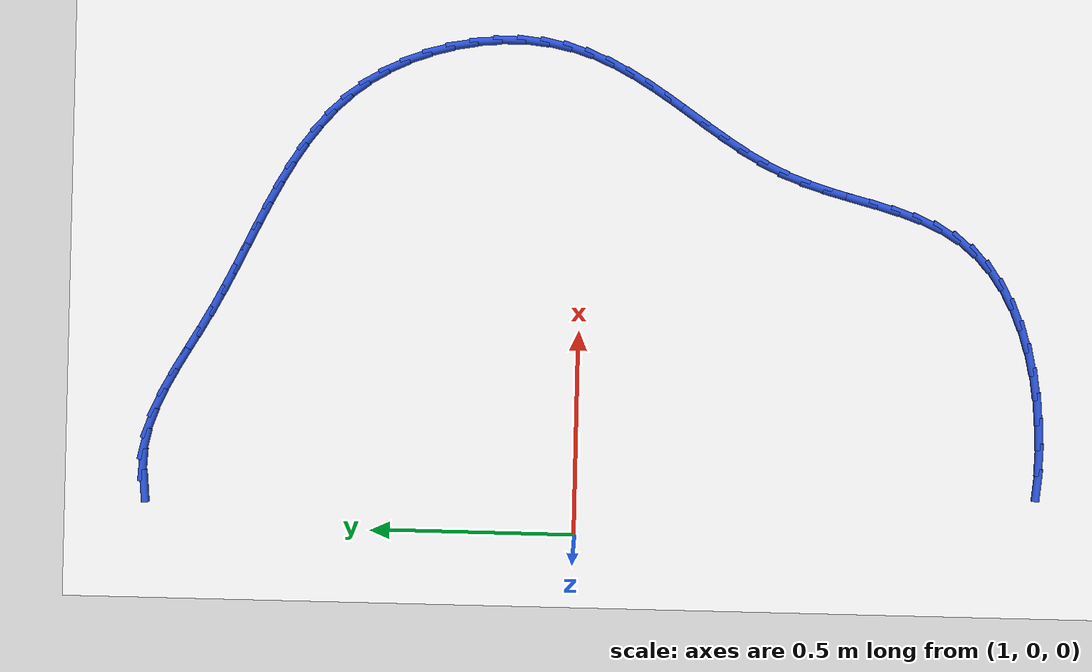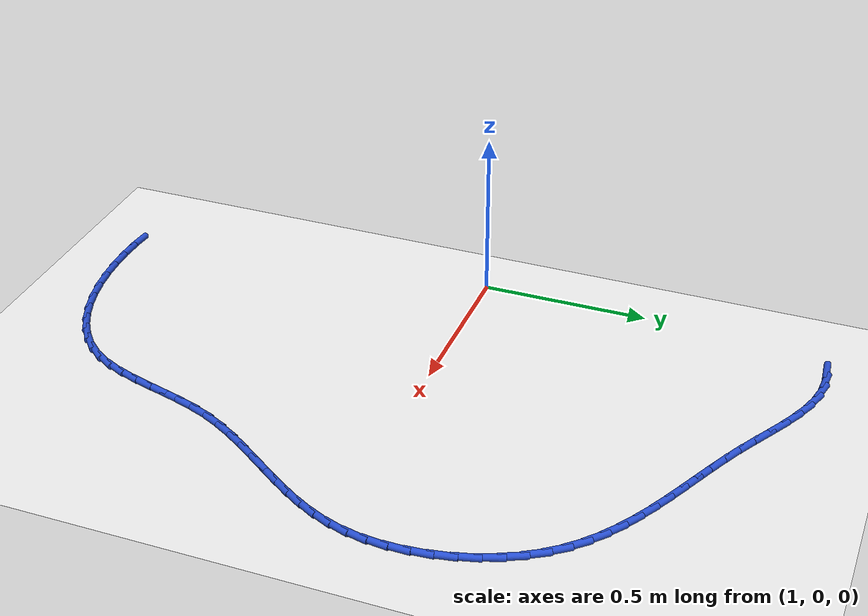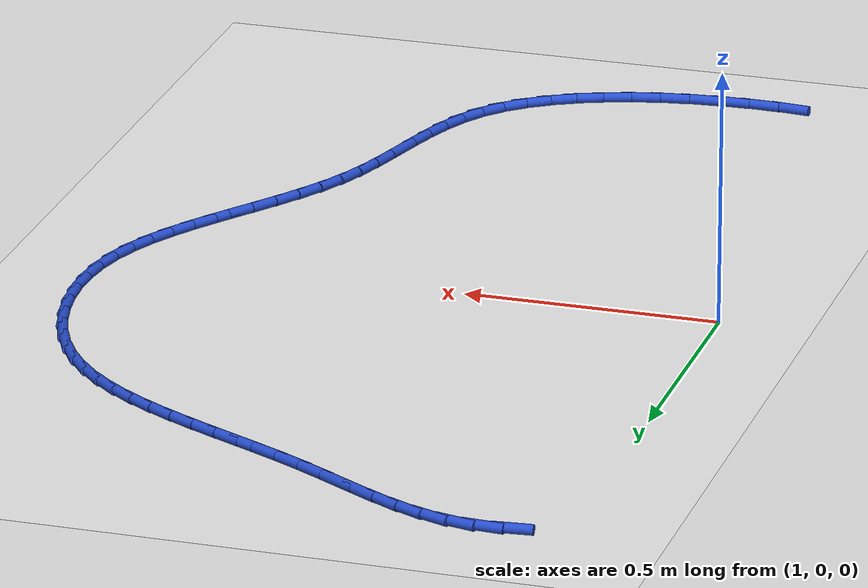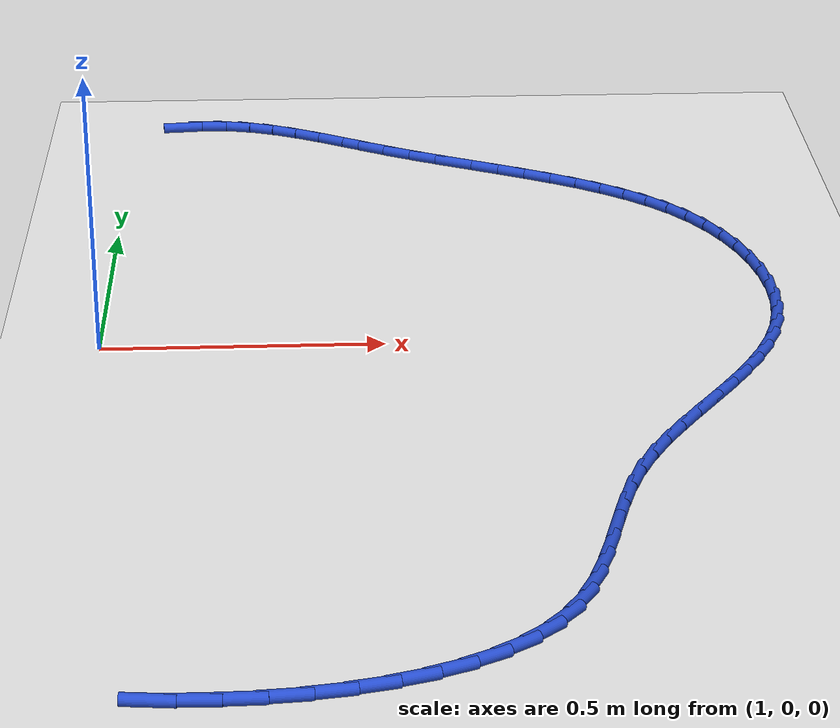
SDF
<sdf version="1.6">
 <world name="default">
  <model name="ground_plane">
   <static>1</static>
   <link name="link">
    <collision name="collision">
     <geometry><plane><normal>0 0 1</normal><size>100 100</size></plane></geometry>
     <surface><friction><ode><mu>100</mu><mu2>50</mu2></ode></friction></surface>
    </collision>
    <visual name="visual">
     <cast_shadows>0</cast_shadows>
     <geometry><plane><normal>0 0 1</normal><size>100 100</size></plane></geometry>
     <material>
      <script><uri>file://media/materials/scripts/gazebo.material</uri><name>Gazebo/WhiteGlow</name></script>
     </material>
    </visual>
   </link>
  </model>
  <model name="line">
   <link name="link_29">
    <pose>1.0969728662997957 1.054257182528616 0.01 0 1.57 0.08889747462284289</pose>
    <collision name="collision">
     <geometry><cylinder><radius>0.01</radius><length>0.08</length></cylinder></geometry>
    </collision>
    <visual name="visual">
     <material>
      <script><name>Gazebo/Blue</name><uri>file://media/materials/scripts/gazebo.material</uri></script>
     </material>
     <geometry><cylinder><radius>0.01</radius><length>0.08</length></cylinder></geometry>
    </visual>
   </link>
   <link name="link_30">
    <pose>1.1488038112493104 1.0588769988264373 0.01 0 1.57 -0.06228667716586876</pose>
    <collision name="collision">
     <geometry><cylinder><radius>0.01</radius><length>0.08</length></cylinder></geometry>
    </collision>
    <visual name="visual">
     <material>
      <script><name>Gazebo/Blue</name><uri>file://media/materials/scripts/gazebo.material</uri></script>
     </material>
     <geometry><cylinder><radius>0.01</radius><length>0.08</length></cylinder></geometry>
    </visual>
   </link>
   <link name="link_31">
    <pose>1.2000704950201648 1.0556796315076389 0.01 0 1.57 -0.2228126759073411</pose>
    <collision name="collision">
     <geometry><cylinder><radius>0.01</radius><length>0.08</length></cylinder></geometry>
    </collision>
    <visual name="visual">
     <material>
      <script><name>Gazebo/Blue</name><uri>file://media/materials/scripts/gazebo.material</uri></script>
     </material>
     <geometry><cylinder><radius>0.01</radius><length>0.08</length></cylinder></geometry>
    </visual>
   </link>
   <link name="link_32">
    <pose>1.2507771792683753 1.0441907841162532 0.01 0 1.57 -0.351570168309762</pose>
    <collision name="collision">
     <geometry><cylinder><radius>0.01</radius><length>0.08</length></cylinder></geometry>
    </collision>
    <visual name="visual">
     <material>
      <script><name>Gazebo/Blue</name><uri>file://media/materials/scripts/gazebo.material</uri></script>
     </material>
     <geometry><cylinder><radius>0.01</radius><length>0.08</length></cylinder></geometry>
    </visual>
   </link>
   <link name="link_33">
    <pose>1.3011128082766208 1.0257272272382287 0.01 0 1.57 -0.4430232968451391</pose>
    <collision name="collision">
     <geometry><cylinder><radius>0.01</radius><length>0.08</length></cylinder></geometry>
    </collision>
    <visual name="visual">
     <material>
      <script><name>Gazebo/Blue</name><uri>file://media/materials/scripts/gazebo.material</uri></script>
     </material>
     <geometry><cylinder><radius>0.01</radius><length>0.08</length></cylinder></geometry>
    </visual>
   </link>
   <link name="link_34">
    <pose>1.351298245172227 1.0019152829949984 0.01 0 1.57 -0.5012094177489993</pose>
    <collision name="collision">
     <geometry><cylinder><radius>0.01</radius><length>0.08</length></cylinder></geometry>
    </collision>
    <visual name="visual">
     <material>
      <script><name>Gazebo/Blue</name><uri>file://media/materials/scripts/gazebo.material</uri></script>
     </material>
     <geometry><cylinder><radius>0.01</radius><length>0.08</length></cylinder></geometry>
    </visual>
   </link>
   <link name="link_35">
    <pose>1.4015543530825199 0.9743812735079957 0.01 0 1.57 -0.5301918646129635</pose>
    <collision name="collision">
     <geometry><cylinder><radius>0.01</radius><length>0.08</length></cylinder></geometry>
    </collision>
    <visual name="visual">
     <material>
      <script><name>Gazebo/Blue</name><uri>file://media/materials/scripts/gazebo.material</uri></script>
     </material>
     <geometry><cylinder><radius>0.01</radius><length>0.08</length></cylinder></geometry>
    </visual>
   </link>
   <link name="link_36">
    <pose>1.4521019951348237 0.944751520898654 0.01 0 1.57 -0.532652678316754</pose>
    <collision name="collision">
     <geometry><cylinder><radius>0.01</radius><length>0.08</length></cylinder></geometry>
    </collision>
    <visual name="visual">
     <material>
      <script><name>Gazebo/Blue</name><uri>file://media/materials/scripts/gazebo.material</uri></script>
     </material>
     <geometry><cylinder><radius>0.01</radius><length>0.08</length></cylinder></geometry>
    </visual>
   </link>
   <link name="link_37">
    <pose>1.5031620344564653 0.9146523472884063 0.01 0 1.57 -0.5102683431471119</pose>
    <collision name="collision">
     <geometry><cylinder><radius>0.01</radius><length>0.08</length></cylinder></geometry>
    </collision>
    <visual name="visual">
     <material>
      <script><name>Gazebo/Blue</name><uri>file://media/materials/scripts/gazebo.material</uri></script>
     </material>
     <geometry><cylinder><radius>0.01</radius><length>0.08</length></cylinder></geometry>
    </visual>
   </link>
   <link name="link_38">
    <pose>1.554943592914567 0.8856696357211216 0.01 0 1.57 -0.4801335186555826</pose>
    <collision name="collision">
     <geometry><cylinder><radius>0.01</radius><length>0.08</length></cylinder></geometry>
    </collision>
    <visual name="visual">
     <material>
      <script><name>Gazebo/Blue</name><uri>file://media/materials/scripts/gazebo.material</uri></script>
     </material>
     <geometry><cylinder><radius>0.01</radius><length>0.08</length></cylinder></geometry>
    </visual>
   </link>
   <link name="link_39">
    <pose>1.6073604247927695 0.8583719685069611 0.01 0 1.57 -0.4603671205808581</pose>
    <collision name="collision">
     <geometry><cylinder><radius>0.01</radius><length>0.08</length></cylinder></geometry>
    </collision>
    <visual name="visual">
     <material>
      <script><name>Gazebo/Blue</name><uri>file://media/materials/scripts/gazebo.material</uri></script>
     </material>
     <geometry><cylinder><radius>0.01</radius><length>0.08</length></cylinder></geometry>
    </visual>
   </link>
   <link name="link_40">
    <pose>1.6600161261576352 0.8322596855373354 0.01 0 1.57 -0.4519260573801818</pose>
    <collision name="collision">
     <geometry><cylinder><radius>0.01</radius><length>0.08</length></cylinder></geometry>
    </collision>
    <visual name="visual">
     <material>
      <script><name>Gazebo/Blue</name><uri>file://media/materials/scripts/gazebo.material</uri></script>
     </material>
     <geometry><cylinder><radius>0.01</radius><length>0.08</length></cylinder></geometry>
    </visual>
   </link>
   <link name="link_41">
    <pose>1.712499591474671 0.8067824916631974 0.01 0 1.57 -0.4550147944020864</pose>
    <collision name="collision">
     <geometry><cylinder><radius>0.01</radius><length>0.08</length></cylinder></geometry>
    </collision>
    <visual name="visual">
     <material>
      <script><name>Gazebo/Blue</name><uri>file://media/materials/scripts/gazebo.material</uri></script>
     </material>
     <geometry><cylinder><radius>0.01</radius><length>0.08</length></cylinder></geometry>
    </visual>
   </link>
   <link name="link_42">
    <pose>1.7643997152093849 0.7813900917355006 0.01 0 1.57 -0.469993026882685</pose>
    <collision name="collision">
     <geometry><cylinder><radius>0.01</radius><length>0.08</length></cylinder></geometry>
    </collision>
    <visual name="visual">
     <material>
      <script><name>Gazebo/Blue</name><uri>file://media/materials/scripts/gazebo.material</uri></script>
     </material>
     <geometry><cylinder><radius>0.01</radius><length>0.08</length></cylinder></geometry>
    </visual>
   </link>
   <link name="link_43">
    <pose>1.8153053918272848 0.7555321906051982 0.01 0 1.57 -0.4973770689594525</pose>
    <collision name="collision">
     <geometry><cylinder><radius>0.01</radius><length>0.08</length></cylinder></geometry>
    </collision>
    <visual name="visual">
     <material>
      <script><name>Gazebo/Blue</name><uri>file://media/materials/scripts/gazebo.material</uri></script>
     </material>
     <geometry><cylinder><radius>0.01</radius><length>0.08</length></cylinder></geometry>
    </visual>
   </link>
   <link name="link_44">
    <pose>1.8648055157938779 0.7286584931232438 0.01 0 1.57 -0.537789429361796</pose>
    <collision name="collision">
     <geometry><cylinder><radius>0.01</radius><length>0.08</length></cylinder></geometry>
    </collision>
    <visual name="visual">
     <material>
      <script><name>Gazebo/Blue</name><uri>file://media/materials/scripts/gazebo.material</uri></script>
     </material>
     <geometry><cylinder><radius>0.01</radius><length>0.08</length></cylinder></geometry>
    </visual>
   </link>
   <link name="link_45">
    <pose>1.9124889815746708 0.7002187041405903 0.01 0 1.57 -0.5918365165851995</pose>
    <collision name="collision">
     <geometry><cylinder><radius>0.01</radius><length>0.08</length></cylinder></geometry>
    </collision>
    <visual name="visual">
     <material>
      <script><name>Gazebo/Blue</name><uri>file://media/materials/scripts/gazebo.material</uri></script>
     </material>
     <geometry><cylinder><radius>0.01</radius><length>0.08</length></cylinder></geometry>
    </visual>
   </link>
   <link name="link_46">
    <pose>1.9579446836351726 0.6696625285081915 0.01 0 1.57 -0.6598907183020574</pose>
    <collision name="collision">
     <geometry><cylinder><radius>0.01</radius><length>0.08</length></cylinder></geometry>
    </collision>
    <visual name="visual">
     <material>
      <script><name>Gazebo/Blue</name><uri>file://media/materials/scripts/gazebo.material</uri></script>
     </material>
     <geometry><cylinder><radius>0.01</radius><length>0.08</length></cylinder></geometry>
    </visual>
   </link>
   <link name="link_47">
    <pose>2.0007615164408894 0.6364396710770002 0.01 0 1.57 -0.7417679760081224</pose>
    <collision name="collision">
     <geometry><cylinder><radius>0.01</radius><length>0.08</length></cylinder></geometry>
    </collision>
    <visual name="visual">
     <material>
      <script><name>Gazebo/Blue</name><uri>file://media/materials/scripts/gazebo.material</uri></script>
     </material>
     <geometry><cylinder><radius>0.01</radius><length>0.08</length></cylinder></geometry>
    </visual>
   </link>
   <link name="link_48">
    <pose>2.0405283744573297 0.59999983669797 0.01 0 1.57 -0.8363432176033798</pose>
    <collision name="collision">
     <geometry><cylinder><radius>0.01</radius><length>0.08</length></cylinder></geometry>
    </collision>
    <visual name="visual">
     <material>
      <script><name>Gazebo/Blue</name><uri>file://media/materials/scripts/gazebo.material</uri></script>
     </material>
     <geometry><cylinder><radius>0.01</radius><length>0.08</length></cylinder></geometry>
    </visual>
   </link>
   <link name="link_49">
    <pose>2.07683415215 0.5597927302220543 0.01 0 1.57 -0.9409349262624538</pose>
    <collision name="collision">
     <geometry><cylinder><radius>0.01</radius><length>0.08</length></cylinder></geometry>
    </collision>
    <visual name="visual">
     <material>
      <script><name>Gazebo/Blue</name><uri>file://media/materials/scripts/gazebo.material</uri></script>
     </material>
     <geometry><cylinder><radius>0.01</radius><length>0.08</length></cylinder></geometry>
    </visual>
   </link>
   <link name="link_50">
    <pose>2.1092714935890777 0.5152911092952521 0.01 0 1.57 -1.045067863066294</pose>
    <collision name="collision">
     <geometry><cylinder><radius>0.01</radius><length>0.08</length></cylinder></geometry>
    </collision>
    <visual name="visual">
     <material>
      <script><name>Gazebo/Blue</name><uri>file://media/materials/scripts/gazebo.material</uri></script>
     </material>
     <geometry><cylinder><radius>0.01</radius><length>0.08</length></cylinder></geometry>
    </visual>
   </link>
   <link name="link_51">
    <pose>2.1375327889201654 0.46658097643516044 0.01 0 1.57 -1.1414372080815771</pose>
    <collision name="collision">
     <geometry><cylinder><radius>0.01</radius><length>0.08</length></cylinder></geometry>
    </collision>
    <visual name="visual">
     <material>
      <script><name>Gazebo/Blue</name><uri>file://media/materials/scripts/gazebo.material</uri></script>
     </material>
     <geometry><cylinder><radius>0.01</radius><length>0.08</length></cylinder></geometry>
    </visual>
   </link>
   <link name="link_52">
    <pose>2.1614183094937824 0.4144115942964042 0.01 0 1.57 -1.2321867495681174</pose>
    <collision name="collision">
     <geometry><cylinder><radius>0.01</radius><length>0.08</length></cylinder></geometry>
    </collision>
    <visual name="visual">
     <material>
      <script><name>Gazebo/Blue</name><uri>file://media/materials/scripts/gazebo.material</uri></script>
     </material>
     <geometry><cylinder><radius>0.01</radius><length>0.08</length></cylinder></geometry>
    </visual>
   </link>
   <link name="link_53">
    <pose>2.180733706426887 0.35956530066128295 0.01 0 1.57 -1.3197608304589081</pose>
    <collision name="collision">
     <geometry><cylinder><radius>0.01</radius><length>0.08</length></cylinder></geometry>
    </collision>
    <visual name="visual">
     <material>
      <script><name>Gazebo/Blue</name><uri>file://media/materials/scripts/gazebo.material</uri></script>
     </material>
     <geometry><cylinder><radius>0.01</radius><length>0.08</length></cylinder></geometry>
    </visual>
   </link>
   <link name="link_54">
    <pose>2.1952846308364387 0.30282443331209463 0.01 0 1.57 -1.4064900271755667</pose>
    <collision name="collision">
     <geometry><cylinder><radius>0.01</radius><length>0.08</length></cylinder></geometry>
    </collision>
    <visual name="visual">
     <material>
      <script><name>Gazebo/Blue</name><uri>file://media/materials/scripts/gazebo.material</uri></script>
     </material>
     <geometry><cylinder><radius>0.01</radius><length>0.08</length></cylinder></geometry>
    </visual>
   </link>
   <link name="link_55">
    <pose>2.204876733839396 0.24497133003113863 0.01 0 1.57 -1.4946512294828471</pose>
    <collision name="collision">
     <geometry><cylinder><radius>0.01</radius><length>0.08</length></cylinder></geometry>
    </collision>
    <visual name="visual">
     <material>
      <script><name>Gazebo/Blue</name><uri>file://media/materials/scripts/gazebo.material</uri></script>
     </material>
     <geometry><cylinder><radius>0.01</radius><length>0.08</length></cylinder></geometry>
    </visual>
   </link>
   <link name="link_56">
    <pose>2.2093156665527163 0.1867883286007128 0.01 0 1.57 1.5550592297681132</pose>
    <collision name="collision">
     <geometry><cylinder><radius>0.01</radius><length>0.08</length></cylinder></geometry>
    </collision>
    <visual name="visual">
     <material>
      <script><name>Gazebo/Blue</name><uri>file://media/materials/scripts/gazebo.material</uri></script>
     </material>
     <geometry><cylinder><radius>0.01</radius><length>0.08</length></cylinder></geometry>
    </visual>
   </link>
   <link name="link_57">
    <pose>2.2084070800933615 0.1290577668031168 0.01 0 1.57 1.4571127633714458</pose>
    <collision name="collision">
     <geometry><cylinder><radius>0.01</radius><length>0.08</length></cylinder></geometry>
    </collision>
    <visual name="visual">
     <material>
      <script><name>Gazebo/Blue</name><uri>file://media/materials/scripts/gazebo.material</uri></script>
     </material>
     <geometry><cylinder><radius>0.01</radius><length>0.08</length></cylinder></geometry>
    </visual>
   </link>
   <link name="link_58">
    <pose>2.201956625578288 0.0725619824206483 0.01 0 1.57 1.3508209022953774</pose>
    <collision name="collision">
     <geometry><cylinder><radius>0.01</radius><length>0.08</length></cylinder></geometry>
    </collision>
    <visual name="visual">
     <material>
      <script><name>Gazebo/Blue</name><uri>file://media/materials/scripts/gazebo.material</uri></script>
     </material>
     <geometry><cylinder><radius>0.01</radius><length>0.08</length></cylinder></geometry>
    </visual>
   </link>
   <link name="link_59">
    <pose>2.189774437217996 0.01807836830712001 0.01 0 1.57 1.2429329722542768</pose>
    <collision name="collision">
     <geometry><cylinder><radius>0.01</radius><length>0.08</length></cylinder></geometry>
    </collision>
    <visual name="visual">
     <material>
      <script><name>Gazebo/Blue</name><uri>file://media/materials/scripts/gazebo.material</uri></script>
     </material>
     <geometry><cylinder><radius>0.01</radius><length>0.08</length></cylinder></geometry>
    </visual>
   </link>
   <link name="link_60">
    <pose>2.172049225565983 -0.034033258834182616 0.01 0 1.57 1.1500943519283586</pose>
    <collision name="collision">
     <geometry><cylinder><radius>0.01</radius><length>0.08</length></cylinder></geometry>
    </collision>
    <visual name="visual">
     <material>
      <script><name>Gazebo/Blue</name><uri>file://media/materials/scripts/gazebo.material</uri></script>
     </material>
     <geometry><cylinder><radius>0.01</radius><length>0.08</length></cylinder></geometry>
    </visual>
   </link>
   <link name="link_61">
    <pose>2.149630067826929 -0.08414147795710682 0.01 0 1.57 1.075942292964172</pose>
    <collision name="collision">
     <geometry><cylinder><radius>0.01</radius><length>0.08</length></cylinder></geometry>
    </collision>
    <visual name="visual">
     <material>
      <script><name>Gazebo/Blue</name><uri>file://media/materials/scripts/gazebo.material</uri></script>
     </material>
     <geometry><cylinder><radius>0.01</radius><length>0.08</length></cylinder></geometry>
    </visual>
   </link>
   <link name="link_62">
    <pose>2.1234324111536216 -0.13268807519802972 0.01 0 1.57 1.0210551438257778</pose>
    <collision name="collision">
     <geometry><cylinder><radius>0.01</radius><length>0.08</length></cylinder></geometry>
    </collision>
    <visual name="visual">
     <material>
      <script><name>Gazebo/Blue</name><uri>file://media/materials/scripts/gazebo.material</uri></script>
     </material>
     <geometry><cylinder><radius>0.01</radius><length>0.08</length></cylinder></geometry>
    </visual>
   </link>
   <link name="link_63">
    <pose>2.094371702698852 -0.18011483669332898 0.01 0 1.57 0.9851297126211859</pose>
    <collision name="collision">
     <geometry><cylinder><radius>0.01</radius><length>0.08</length></cylinder></geometry>
    </collision>
    <visual name="visual">
     <material>
      <script><name>Gazebo/Blue</name><uri>file://media/materials/scripts/gazebo.material</uri></script>
     </material>
     <geometry><cylinder><radius>0.01</radius><length>0.08</length></cylinder></geometry>
    </visual>
   </link>
   <link name="link_64">
    <pose>2.06336338961541 -0.22686354857938013 0.01 0 1.57 0.9675874456906028</pose>
    <collision name="collision">
     <geometry><cylinder><radius>0.01</radius><length>0.08</length></cylinder></geometry>
    </collision>
    <visual name="visual">
     <material>
      <script><name>Gazebo/Blue</name><uri>file://media/materials/scripts/gazebo.material</uri></script>
     </material>
     <geometry><cylinder><radius>0.01</radius><length>0.08</length></cylinder></geometry>
    </visual>
   </link>
   <link name="link_65">
    <pose>2.0313229190560844 -0.2733759969925608 0.01 0 1.57 0.9679484985064164</pose>
    <collision name="collision">
     <geometry><cylinder><radius>0.01</radius><length>0.08</length></cylinder></geometry>
    </collision>
    <visual name="visual">
     <material>
      <script><name>Gazebo/Blue</name><uri>file://media/materials/scripts/gazebo.material</uri></script>
     </material>
     <geometry><cylinder><radius>0.01</radius><length>0.08</length></cylinder></geometry>
    </visual>
   </link>
   <link name="link_66">
    <pose>1.9991657381736658 -0.32009396806924845 0.01 0 1.57 0.9859928670061474</pose>
    <collision name="collision">
     <geometry><cylinder><radius>0.01</radius><length>0.08</length></cylinder></geometry>
    </collision>
    <visual name="visual">
     <material>
      <script><name>Gazebo/Blue</name><uri>file://media/materials/scripts/gazebo.material</uri></script>
     </material>
     <geometry><cylinder><radius>0.01</radius><length>0.08</length></cylinder></geometry>
    </visual>
   </link>
   <link name="link_67">
    <pose>1.9678072941209441 -0.36745924794581875 0.01 0 1.57 1.0217474038126741</pose>
    <collision name="collision">
     <geometry><cylinder><radius>0.01</radius><length>0.08</length></cylinder></geometry>
    </collision>
    <visual name="visual">
     <material>
      <script><name>Gazebo/Blue</name><uri>file://media/materials/scripts/gazebo.material</uri></script>
     </material>
     <geometry><cylinder><radius>0.01</radius><length>0.08</length></cylinder></geometry>
    </visual>
   </link>
   <link name="link_68">
    <pose>1.9381630340507086 -0.4159136227586492 0.01 0 1.57 1.0753132158441037</pose>
    <collision name="collision">
     <geometry><cylinder><radius>0.01</radius><length>0.08</length></cylinder></geometry>
    </collision>
    <visual name="visual">
     <material>
      <script><name>Gazebo/Blue</name><uri>file://media/materials/scripts/gazebo.material</uri></script>
     </material>
     <geometry><cylinder><radius>0.01</radius><length>0.08</length></cylinder></geometry>
    </visual>
   </link>
   <link name="link_69">
    <pose>1.9111484051157492 -0.4658988786441167 0.01 0 1.57 1.1465238890458025</pose>
    <collision name="collision">
     <geometry><cylinder><radius>0.01</radius><length>0.08</length></cylinder></geometry>
    </collision>
    <visual name="visual">
     <material>
      <script><name>Gazebo/Blue</name><uri>file://media/materials/scripts/gazebo.material</uri></script>
     </material>
     <geometry><cylinder><radius>0.01</radius><length>0.08</length></cylinder></geometry>
    </visual>
   </link>
   <link name="link_70">
    <pose>1.8876786976180002 -0.5178567080440973 0.01 0 1.57 1.2250828547654369</pose>
    <collision name="collision">
     <geometry><cylinder><radius>0.01</radius><length>0.08</length></cylinder></geometry>
    </collision>
    <visual name="visual">
     <material>
      <script><name>Gazebo/Blue</name><uri>file://media/materials/scripts/gazebo.material</uri></script>
     </material>
     <geometry><cylinder><radius>0.01</radius><length>0.08</length></cylinder></geometry>
    </visual>
   </link>
   <link name="link_71">
    <pose>1.8681967039818954 -0.5719465578687154 0.01 0 1.57 1.280624318490369</pose>
    <collision name="collision">
     <geometry><cylinder><radius>0.01</radius><length>0.08</length></cylinder></geometry>
    </collision>
    <visual name="visual">
     <material>
      <script><name>Gazebo/Blue</name><uri>file://media/materials/scripts/gazebo.material</uri></script>
     </material>
     <geometry><cylinder><radius>0.01</radius><length>0.08</length></cylinder></geometry>
    </visual>
   </link>
   <link name="link_72">
    <pose>1.8516312747492132 -0.6274235252901327 0.01 0 1.57 1.3084307100759613</pose>
    <collision name="collision">
     <geometry><cylinder><radius>0.01</radius><length>0.08</length></cylinder></geometry>
    </collision>
    <visual name="visual">
     <material>
      <script><name>Gazebo/Blue</name><uri>file://media/materials/scripts/gazebo.material</uri></script>
     </material>
     <geometry><cylinder><radius>0.01</radius><length>0.08</length></cylinder></geometry>
    </visual>
   </link>
   <link name="link_73">
    <pose>1.8366086650706699 -0.6833619528123456 0.01 0 1.57 1.3091775853645196</pose>
    <collision name="collision">
     <geometry><cylinder><radius>0.01</radius><length>0.08</length></cylinder></geometry>
    </collision>
    <visual name="visual">
     <material>
      <script><name>Gazebo/Blue</name><uri>file://media/materials/scripts/gazebo.material</uri></script>
     </material>
     <geometry><cylinder><radius>0.01</radius><length>0.08</length></cylinder></geometry>
    </visual>
   </link>
   <link name="link_74">
    <pose>1.8217551300969794 -0.7388361829393509 0.01 0 1.57 1.2821765746477405</pose>
    <collision name="collision">
     <geometry><cylinder><radius>0.01</radius><length>0.08</length></cylinder></geometry>
    </collision>
    <visual name="visual">
     <material>
      <script><name>Gazebo/Blue</name><uri>file://media/materials/scripts/gazebo.material</uri></script>
     </material>
     <geometry><cylinder><radius>0.01</radius><length>0.08</length></cylinder></geometry>
    </visual>
   </link>
   <link name="link_75">
    <pose>1.805696924978857 -0.792920558175144 0.01 0 1.57 1.2252436620706602</pose>
    <collision name="collision">
     <geometry><cylinder><radius>0.01</radius><length>0.08</length></cylinder></geometry>
    </collision>
    <visual name="visual">
     <material>
      <script><name>Gazebo/Blue</name><uri>file://media/materials/scripts/gazebo.material</uri></script>
     </material>
     <geometry><cylinder><radius>0.01</radius><length>0.08</length></cylinder></geometry>
    </visual>
   </link>
   <link name="link_76">
    <pose>1.787060304867017 -0.8446894210237212 0.01 0 1.57 1.1351422090830439</pose>
    <collision name="collision">
     <geometry><cylinder><radius>0.01</radius><length>0.08</length></cylinder></geometry>
    </collision>
    <visual name="visual">
     <material>
      <script><name>Gazebo/Blue</name><uri>file://media/materials/scripts/gazebo.material</uri></script>
     </material>
     <geometry><cylinder><radius>0.01</radius><length>0.08</length></cylinder></geometry>
    </visual>
   </link>
   <link name="link_77">
    <pose>1.7644715249121732 -0.8932171139890792 0.01 0 1.57 1.0091523153566155</pose>
    <collision name="collision">
     <geometry><cylinder><radius>0.01</radius><length>0.08</length></cylinder></geometry>
    </collision>
    <visual name="visual">
     <material>
      <script><name>Gazebo/Blue</name><uri>file://media/materials/scripts/gazebo.material</uri></script>
     </material>
     <geometry><cylinder><radius>0.01</radius><length>0.08</length></cylinder></geometry>
    </visual>
   </link>
   <link name="link_78">
    <pose>1.7365575621061746 -0.9375783576064083 0.01 0 1.57 0.8585115373942115</pose>
    <collision name="collision">
     <geometry><cylinder><radius>0.01</radius><length>0.08</length></cylinder></geometry>
    </collision>
    <visual name="visual">
     <material>
      <script><name>Gazebo/Blue</name><uri>file://media/materials/scripts/gazebo.material</uri></script>
     </material>
     <geometry><cylinder><radius>0.01</radius><length>0.08</length></cylinder></geometry>
    </visual>
   </link>
   <link name="link_79">
    <pose>1.702429188918844 -0.977101238107941 0.01 0 1.57 0.7157576769715819</pose>
    <collision name="collision">
     <geometry><cylinder><radius>0.01</radius><length>0.08</length></cylinder></geometry>
    </collision>
    <visual name="visual">
     <material>
      <script><name>Gazebo/Blue</name><uri>file://media/materials/scripts/gazebo.material</uri></script>
     </material>
     <geometry><cylinder><radius>0.01</radius><length>0.08</length></cylinder></geometry>
    </visual>
   </link>
   <link name="link_80">
    <pose>1.662519468023488 -1.0118063305860854 0.01 0 1.57 0.5880385650003856</pose>
    <collision name="collision">
     <geometry><cylinder><radius>0.01</radius><length>0.08</length></cylinder></geometry>
    </collision>
    <visual name="visual">
     <material>
      <script><name>Gazebo/Blue</name><uri>file://media/materials/scripts/gazebo.material</uri></script>
     </material>
     <geometry><cylinder><radius>0.01</radius><length>0.08</length></cylinder></geometry>
    </visual>
   </link>
   <link name="link_81">
    <pose>1.6174853114422152 -1.0418314409650256 0.01 0 1.57 0.47540890893272675</pose>
    <collision name="collision">
     <geometry><cylinder><radius>0.01</radius><length>0.08</length></cylinder></geometry>
    </collision>
    <visual name="visual">
     <material>
      <script><name>Gazebo/Blue</name><uri>file://media/materials/scripts/gazebo.material</uri></script>
     </material>
     <geometry><cylinder><radius>0.01</radius><length>0.08</length></cylinder></geometry>
    </visual>
   </link>
   <link name="link_82">
    <pose>1.5679836311971378 -1.0673143751689438 0.01 0 1.57 0.37651647328941823</pose>
    <collision name="collision">
     <geometry><cylinder><radius>0.01</radius><length>0.08</length></cylinder></geometry>
    </collision>
    <visual name="visual">
     <material>
      <script><name>Gazebo/Blue</name><uri>file://media/materials/scripts/gazebo.material</uri></script>
     </material>
     <geometry><cylinder><radius>0.01</radius><length>0.08</length></cylinder></geometry>
    </visual>
   </link>
   <link name="link_83">
    <pose>1.5146713393103663 -1.088392939122025 0.01 0 1.57 0.28937910807659145</pose>
    <collision name="collision">
     <geometry><cylinder><radius>0.01</radius><length>0.08</length></cylinder></geometry>
    </collision>
    <visual name="visual">
     <material>
      <script><name>Gazebo/Blue</name><uri>file://media/materials/scripts/gazebo.material</uri></script>
     </material>
     <geometry><cylinder><radius>0.01</radius><length>0.08</length></cylinder></geometry>
    </visual>
   </link>
   <link name="link_84">
    <pose>1.4582053478040096 -1.1052049387484524 0.01 0 1.57 0.21187737171409718</pose>
    <collision name="collision">
     <geometry><cylinder><radius>0.01</radius><length>0.08</length></cylinder></geometry>
    </collision>
    <visual name="visual">
     <material>
      <script><name>Gazebo/Blue</name><uri>file://media/materials/scripts/gazebo.material</uri></script>
     </material>
     <geometry><cylinder><radius>0.01</radius><length>0.08</length></cylinder></geometry>
    </visual>
   </link>
   <link name="link_85">
    <pose>1.3992425687001786 -1.11788817997241 0.01 0 1.57 0.1419969059852947</pose>
    <collision name="collision">
     <geometry><cylinder><radius>0.01</radius><length>0.08</length></cylinder></geometry>
    </collision>
    <visual name="visual">
     <material>
      <script><name>Gazebo/Blue</name><uri>file://media/materials/scripts/gazebo.material</uri></script>
     </material>
     <geometry><cylinder><radius>0.01</radius><length>0.08</length></cylinder></geometry>
    </visual>
   </link>
   <link name="link_86">
    <pose>1.3384399140209846 -1.1265804687180812 0.01 0 1.57 0.07791076424448619</pose>
    <collision name="collision">
     <geometry><cylinder><radius>0.01</radius><length>0.08</length></cylinder></geometry>
    </collision>
    <visual name="visual">
     <material>
      <script><name>Gazebo/Blue</name><uri>file://media/materials/scripts/gazebo.material</uri></script>
     </material>
     <geometry><cylinder><radius>0.01</radius><length>0.08</length></cylinder></geometry>
    </visual>
   </link>
   <link name="link_87">
    <pose>1.2764542957885379 -1.13141961090965 0.01 0 1.57 0.017975531968118533</pose>
    <collision name="collision">
     <geometry><cylinder><radius>0.01</radius><length>0.08</length></cylinder></geometry>
    </collision>
    <visual name="visual">
     <material>
      <script><name>Gazebo/Blue</name><uri>file://media/materials/scripts/gazebo.material</uri></script>
     </material>
     <geometry><cylinder><radius>0.01</radius><length>0.08</length></cylinder></geometry>
    </visual>
   </link>
   <link name="link_88">
    <pose>1.2139426260249484 -1.1325434124712996 0.01 0 1.57 -0.039314475976888835</pose>
    <collision name="collision">
     <geometry><cylinder><radius>0.01</radius><length>0.08</length></cylinder></geometry>
    </collision>
    <visual name="visual">
     <material>
      <script><name>Gazebo/Blue</name><uri>file://media/materials/scripts/gazebo.material</uri></script>
     </material>
     <geometry><cylinder><radius>0.01</radius><length>0.08</length></cylinder></geometry>
    </visual>
   </link>
   <link name="link_89">
    <pose>1.151561816752326 -1.1300896793272142 0.01 0 1.57 -0.09539348454015605</pose>
    <collision name="collision">
     <geometry><cylinder><radius>0.01</radius><length>0.08</length></cylinder></geometry>
    </collision>
    <visual name="visual">
     <material>
      <script><name>Gazebo/Blue</name><uri>file://media/materials/scripts/gazebo.material</uri></script>
     </material>
     <geometry><cylinder><radius>0.01</radius><length>0.08</length></cylinder></geometry>
    </visual>
   </link>
  </model>
 </world>
</sdf>
